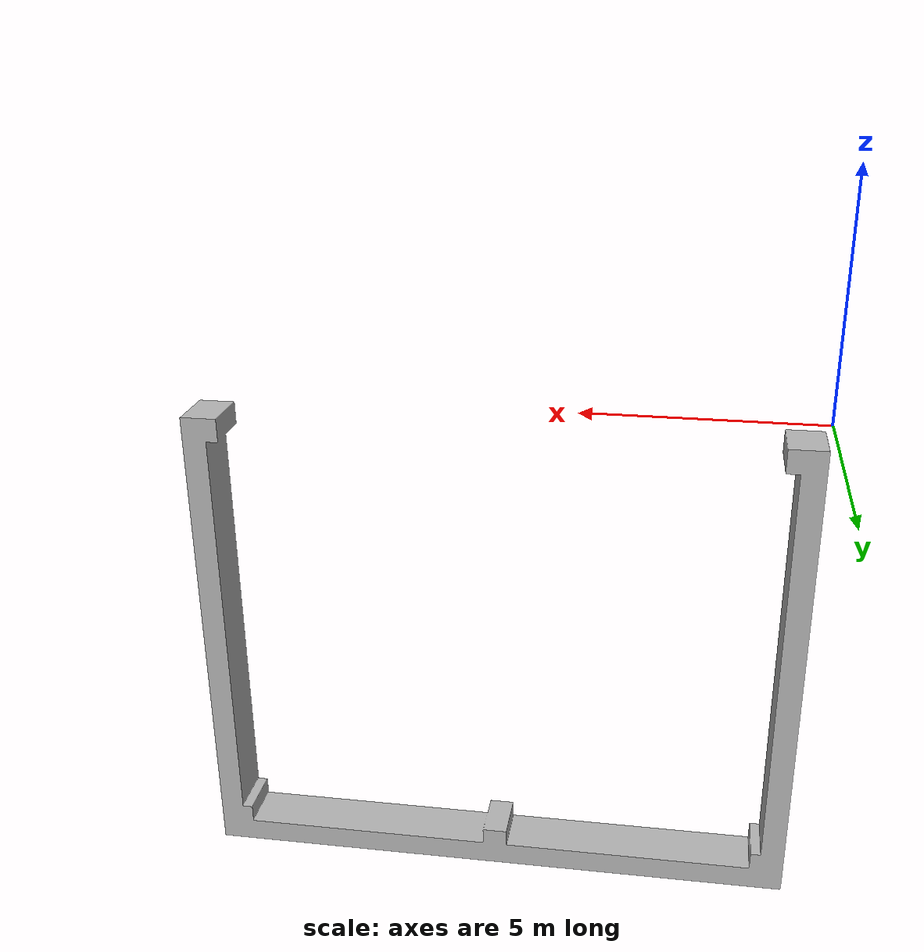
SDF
<?xml version="1.0" ?>
<sdf version="1.6">
  <model name="backside_wall">
    <pose>0 0 0 0 0 0</pose>
    <static>true</static>
    <link name="body">
      <visual name="visual">
        <geometry>
          <mesh><uri>model://backside_wall/meshes/backside_wall.dae</uri></mesh>
        </geometry>
      </visual>
      <collision name="collision">
        <geometry>
	  <mesh><uri>model://backside_wall/meshes/backside_wall.dae</uri></mesh>
        </geometry>
      </collision>
    </link>
  </model>
</sdf>
